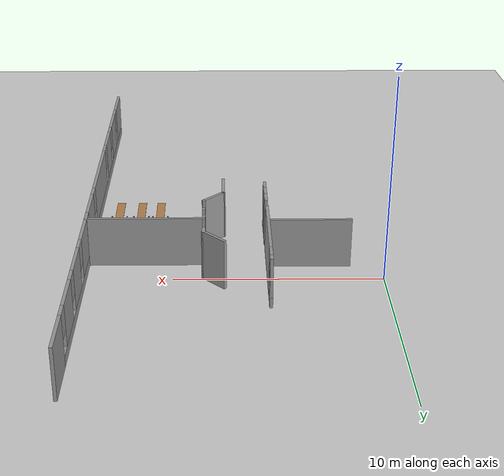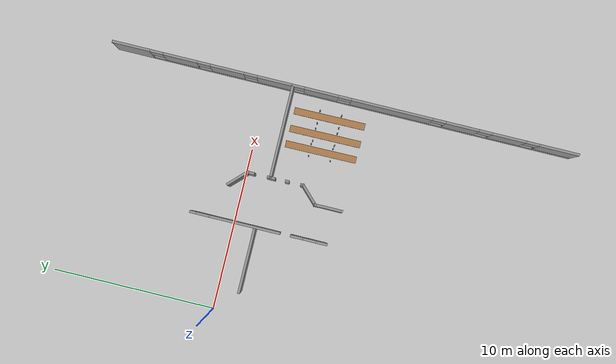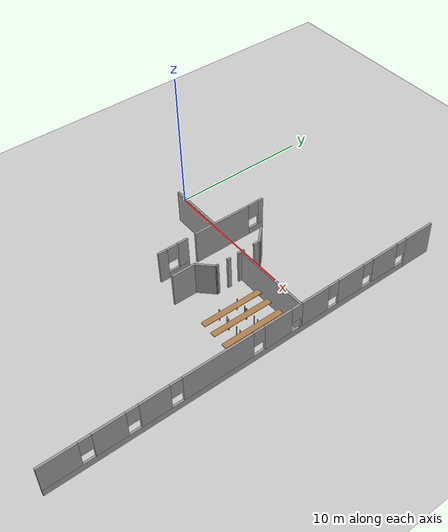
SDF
<sdf version="1.6">
 <world name="default">
  <model name="ground_plane">
   <static>1</static>
   <link name="link">
    <collision name="collision">
     <geometry><plane><normal>0 0 1</normal><size>100 100</size></plane></geometry>
     <surface><friction><ode><mu>100</mu><mu2>50</mu2></ode></friction></surface>
    </collision>
    <visual name="visual">
     <cast_shadows>0</cast_shadows>
     <geometry><plane><normal>0 0 1</normal><size>100 100</size></plane></geometry>
     <material>
      <script><uri>file://media/materials/scripts/gazebo.material</uri><name>Gazebo/Grey</name></script>
     </material>
    </visual>
   </link>
  </model>
  <model name="Parte_DX_(visione_alta_mappa)_CV1">
   <pose>7.84951 -6.02799 0 0 -0 0</pose>
   <link name="Wall_101">
    <collision name="Wall_101_Collision">
     <geometry><box><size>1.75 0.15 2.5</size></box></geometry>
     <pose>0 0 1.25 0 -0 0</pose>
    </collision>
    <visual name="Wall_101_Visual">
     <pose>0 0 1.25 0 -0 0</pose>
     <geometry><box><size>1.75 0.15 2.5</size></box></geometry>
     <material>
      <script><uri>file://media/materials/scripts/gazebo.material</uri><name>Gazebo/Grey</name></script>
      <ambient>1 1 1 1</ambient>
     </material>
    </visual>
    <pose>-0.253384 0.713118 0 0 0 -1.5708</pose>
   </link>
   <link name="Wall_117">
    <collision name="Wall_117_Collision">
     <geometry><box><size>0.15 0.15 2.5</size></box></geometry>
     <pose>0 0 1.25 0 -0 0</pose>
    </collision>
    <visual name="Wall_117_Visual">
     <pose>0 0 1.25 0 -0 0</pose>
     <geometry><box><size>0.15 0.15 2.5</size></box></geometry>
     <material>
      <script><uri>file://media/materials/scripts/gazebo.material</uri><name>Gazebo/Grey</name></script>
      <ambient>1 1 1 1</ambient>
     </material>
    </visual>
    <pose>-0.253384 1.51312 0 0 -0 0</pose>
   </link>
   <link name="Wall_119">
    <collision name="Wall_119_Collision">
     <geometry><box><size>0.25 0.15 2.5</size></box></geometry>
     <pose>0 0 1.25 0 -0 0</pose>
    </collision>
    <visual name="Wall_119_Visual">
     <pose>0 0 1.25 0 -0 0</pose>
     <geometry><box><size>0.25 0.15 2.5</size></box></geometry>
     <material>
      <script><uri>file://media/materials/scripts/gazebo.material</uri><name>Gazebo/Grey</name></script>
      <ambient>1 1 1 1</ambient>
     </material>
    </visual>
    <pose>0.70121 2.51771 0 0 -0 1.5708</pose>
   </link>
   <link name="Wall_123">
    <collision name="Wall_123_Collision">
     <geometry><box><size>1.5 0.15 2.5</size></box></geometry>
     <pose>0 0 1.25 0 -0 0</pose>
    </collision>
    <visual name="Wall_123_Visual">
     <pose>0 0 1.25 0 -0 0</pose>
     <geometry><box><size>1.5 0.15 2.5</size></box></geometry>
     <material>
      <script><uri>file://media/materials/scripts/gazebo.material</uri><name>Gazebo/Grey</name></script>
      <ambient>1 1 1 1</ambient>
     </material>
    </visual>
    <pose>0.223913 1.99042 0 0 -0 0.785398</pose>
   </link>
   <link name="Wall_125">
    <collision name="Wall_125_Collision">
     <geometry><box><size>0.25 0.15 2.5</size></box></geometry>
     <pose>0 0 1.25 0 -0 0</pose>
    </collision>
    <visual name="Wall_125_Visual">
     <pose>0 0 1.25 0 -0 0</pose>
     <geometry><box><size>0.25 0.15 2.5</size></box></geometry>
     <material>
      <script><uri>file://media/materials/scripts/gazebo.material</uri><name>Gazebo/Grey</name></script>
      <ambient>1 1 1 1</ambient>
     </material>
    </visual>
    <pose>0.700925 3.44587 0 0 0 -1.5708</pose>
   </link>
   <link name="Wall_127">
    <collision name="Wall_127_Collision">
     <geometry><box><size>0.5 0.15 2.5</size></box></geometry>
     <pose>0 0 1.25 0 -0 0</pose>
    </collision>
    <visual name="Wall_127_Visual">
     <pose>0 0 1.25 0 -0 0</pose>
     <geometry><box><size>0.5 0.15 2.5</size></box></geometry>
     <material>
      <script><uri>file://media/materials/scripts/gazebo.material</uri><name>Gazebo/Grey</name></script>
      <ambient>1 1 1 1</ambient>
     </material>
    </visual>
    <pose>0.681262 4.41709 0 0 0 -1.5708</pose>
   </link>
   <link name="Wall_130">
    <collision name="Wall_130_Collision">
     <geometry><box><size>5.75 0.15 2.5</size></box></geometry>
     <pose>0 0 1.25 0 -0 0</pose>
    </collision>
    <visual name="Wall_130_Visual">
     <pose>0 0 1.25 0 -0 0</pose>
     <geometry><box><size>5.75 0.15 2.5</size></box></geometry>
     <material>
      <script><uri>file://media/materials/scripts/gazebo.material</uri><name>Gazebo/Grey</name></script>
      <ambient>1 1 1 1</ambient>
     </material>
    </visual>
    <pose>3.51474 4.4692 0 0 -0 3.14159</pose>
   </link>
   <link name="Wall_176">
    <pose>-2.37395 1.38843 0 0 -0 1.5708</pose>
    <visual name="Wall_176_Visual_0">
     <pose>-0.785504 0 1.25 0 -0 0</pose>
     <geometry><box><size>0.678993 0.15 2.5</size></box></geometry>
     <material>
      <script><uri>file://media/materials/scripts/gazebo.material</uri><name>Gazebo/Grey</name></script>
      <ambient>1 1 1 1</ambient>
     </material>
    </visual>
    <collision name="Wall_176_Collision_0">
     <geometry><box><size>0.678993 0.15 2.5</size></box></geometry>
     <pose>-0.785504 0 1.25 0 -0 0</pose>
    </collision>
    <visual name="Wall_176_Visual_1">
     <pose>0.339496 0 0.25 0 -0 0</pose>
     <geometry><box><size>1.57101 0.15 0.5</size></box></geometry>
     <material>
      <script><uri>file://media/materials/scripts/gazebo.material</uri><name>Gazebo/Grey</name></script>
      <ambient>1 1 1 1</ambient>
     </material>
    </visual>
    <collision name="Wall_176_Collision_1">
     <geometry><box><size>1.57101 0.15 0.5</size></box></geometry>
     <pose>0.339496 0 0.25 0 -0 0</pose>
    </collision>
    <visual name="Wall_176_Visual_2">
     <pose>0.739496 0 1.5 0 -0 0</pose>
     <geometry><box><size>0.771007 0.15 2</size></box></geometry>
     <material>
      <script><uri>file://media/materials/scripts/gazebo.material</uri><name>Gazebo/Grey</name></script>
      <ambient>1 1 1 1</ambient>
     </material>
    </visual>
    <collision name="Wall_176_Collision_2">
     <geometry><box><size>0.771007 0.15 2</size></box></geometry>
     <pose>0.739496 0 1.5 0 -0 0</pose>
    </collision>
    <visual name="Wall_176_Visual_3">
     <pose>-0.046007 0 1.9 0 -0 0</pose>
     <geometry><box><size>0.8 0.15 1.2</size></box></geometry>
     <material>
      <script><uri>file://media/materials/scripts/gazebo.material</uri><name>Gazebo/Grey</name></script>
      <ambient>1 1 1 1</ambient>
     </material>
    </visual>
    <collision name="Wall_176_Collision_3">
     <geometry><box><size>0.8 0.15 1.2</size></box></geometry>
     <pose>-0.046007 0 1.9 0 -0 0</pose>
    </collision>
   </link>
   <link name="Wall_178">
    <pose>-2.38898 5.87055 0 0 -0 1.5708</pose>
    <visual name="Wall_178_Visual_0">
     <pose>-0.604104 0 1.25 0 -0 0</pose>
     <geometry><box><size>4.29179 0.15 2.5</size></box></geometry>
     <material>
      <script><uri>file://media/materials/scripts/gazebo.material</uri><name>Gazebo/Grey</name></script>
      <ambient>1 1 1 1</ambient>
     </material>
    </visual>
    <collision name="Wall_178_Collision_0">
     <geometry><box><size>4.29179 0.15 2.5</size></box></geometry>
     <pose>-0.604104 0 1.25 0 -0 0</pose>
    </collision>
    <visual name="Wall_178_Visual_1">
     <pose>2.1459 0 0.25 0 -0 0</pose>
     <geometry><box><size>1.20821 0.15 0.5</size></box></geometry>
     <material>
      <script><uri>file://media/materials/scripts/gazebo.material</uri><name>Gazebo/Grey</name></script>
      <ambient>1 1 1 1</ambient>
     </material>
    </visual>
    <collision name="Wall_178_Collision_1">
     <geometry><box><size>1.20821 0.15 0.5</size></box></geometry>
     <pose>2.1459 0 0.25 0 -0 0</pose>
    </collision>
    <visual name="Wall_178_Visual_2">
     <pose>2.5459 0 1.5 0 -0 0</pose>
     <geometry><box><size>0.408208 0.15 2</size></box></geometry>
     <material>
      <script><uri>file://media/materials/scripts/gazebo.material</uri><name>Gazebo/Grey</name></script>
      <ambient>1 1 1 1</ambient>
     </material>
    </visual>
    <collision name="Wall_178_Collision_2">
     <geometry><box><size>0.408208 0.15 2</size></box></geometry>
     <pose>2.5459 0 1.5 0 -0 0</pose>
    </collision>
    <visual name="Wall_178_Visual_3">
     <pose>1.94179 0 1.9 0 -0 0</pose>
     <geometry><box><size>0.8 0.15 1.2</size></box></geometry>
     <material>
      <script><uri>file://media/materials/scripts/gazebo.material</uri><name>Gazebo/Grey</name></script>
      <ambient>1 1 1 1</ambient>
     </material>
    </visual>
    <collision name="Wall_178_Collision_3">
     <geometry><box><size>0.8 0.15 1.2</size></box></geometry>
     <pose>1.94179 0 1.9 0 -0 0</pose>
    </collision>
   </link>
   <link name="Wall_183">
    <collision name="Wall_183_Collision">
     <geometry><box><size>4 0.15 2.5</size></box></geometry>
     <pose>0 0 1.25 0 -0 0</pose>
    </collision>
    <visual name="Wall_183_Visual">
     <pose>0 0 1.25 0 -0 0</pose>
     <geometry><box><size>4 0.15 2.5</size></box></geometry>
     <material>
      <script><uri>file://media/materials/scripts/gazebo.material</uri><name>Gazebo/Grey</name></script>
      <ambient>1 1 1 1</ambient>
     </material>
    </visual>
    <pose>-4.39285 4.65738 0 0 -0 3.14159</pose>
   </link>
   <link name="Wall_69">
    <pose>6.31785 1.27717 0 0 0 -1.5708</pose>
    <visual name="Wall_69_Visual_0">
     <pose>-13.0951 0 1.25 0 -0 0</pose>
     <geometry><box><size>2.30974 0.15 2.5</size></box></geometry>
     <material>
      <script><uri>file://media/materials/scripts/gazebo.material</uri><name>Gazebo/Grey</name></script>
      <ambient>1 1 1 1</ambient>
     </material>
    </visual>
    <collision name="Wall_69_Collision_0">
     <geometry><box><size>2.30974 0.15 2.5</size></box></geometry>
     <pose>-13.0951 0 1.25 0 -0 0</pose>
    </collision>
    <visual name="Wall_69_Visual_1">
     <pose>1.15487 0 0.25 0 -0 0</pose>
     <geometry><box><size>26.1903 0.15 0.5</size></box></geometry>
     <material>
      <script><uri>file://media/materials/scripts/gazebo.material</uri><name>Gazebo/Grey</name></script>
      <ambient>1 1 1 1</ambient>
     </material>
    </visual>
    <collision name="Wall_69_Collision_1">
     <geometry><box><size>26.1903 0.15 0.5</size></box></geometry>
     <pose>1.15487 0 0.25 0 -0 0</pose>
    </collision>
    <visual name="Wall_69_Visual_2">
     <pose>-10.0967 0 1.5 0 -0 0</pose>
     <geometry><box><size>2.0872 0.15 2</size></box></geometry>
     <material>
      <script><uri>file://media/materials/scripts/gazebo.material</uri><name>Gazebo/Grey</name></script>
      <ambient>1 1 1 1</ambient>
     </material>
    </visual>
    <collision name="Wall_69_Collision_2">
     <geometry><box><size>2.0872 0.15 2</size></box></geometry>
     <pose>-10.0967 0 1.5 0 -0 0</pose>
    </collision>
    <visual name="Wall_69_Visual_3">
     <pose>-7.21698 0 1.5 0 -0 0</pose>
     <geometry><box><size>2.07216 0.15 2</size></box></geometry>
     <material>
      <script><uri>file://media/materials/scripts/gazebo.material</uri><name>Gazebo/Grey</name></script>
      <ambient>1 1 1 1</ambient>
     </material>
    </visual>
    <collision name="Wall_69_Collision_3">
     <geometry><box><size>2.07216 0.15 2</size></box></geometry>
     <pose>-7.21698 0 1.5 0 -0 0</pose>
    </collision>
    <visual name="Wall_69_Visual_4">
     <pose>-4.3373 0 1.5 0 -0 0</pose>
     <geometry><box><size>2.0872 0.15 2</size></box></geometry>
     <material>
      <script><uri>file://media/materials/scripts/gazebo.material</uri><name>Gazebo/Grey</name></script>
      <ambient>1 1 1 1</ambient>
     </material>
    </visual>
    <collision name="Wall_69_Collision_4">
     <geometry><box><size>2.0872 0.15 2</size></box></geometry>
     <pose>-4.3373 0 1.5 0 -0 0</pose>
    </collision>
    <visual name="Wall_69_Visual_5">
     <pose>-1.45762 0 1.5 0 -0 0</pose>
     <geometry><box><size>2.07216 0.15 2</size></box></geometry>
     <material>
      <script><uri>file://media/materials/scripts/gazebo.material</uri><name>Gazebo/Grey</name></script>
      <ambient>1 1 1 1</ambient>
     </material>
    </visual>
    <collision name="Wall_69_Collision_5">
     <geometry><box><size>2.07216 0.15 2</size></box></geometry>
     <pose>-1.45762 0 1.5 0 -0 0</pose>
    </collision>
    <visual name="Wall_69_Visual_6">
     <pose>2.85813 0 1.5 0 -0 0</pose>
     <geometry><box><size>4.95936 0.15 2</size></box></geometry>
     <material>
      <script><uri>file://media/materials/scripts/gazebo.material</uri><name>Gazebo/Grey</name></script>
      <ambient>1 1 1 1</ambient>
     </material>
    </visual>
    <collision name="Wall_69_Collision_6">
     <geometry><box><size>4.95936 0.15 2</size></box></geometry>
     <pose>2.85813 0 1.5 0 -0 0</pose>
    </collision>
    <visual name="Wall_69_Visual_7">
     <pose>7.14382 0 1.5 0 -0 0</pose>
     <geometry><box><size>2.01201 0.15 2</size></box></geometry>
     <material>
      <script><uri>file://media/materials/scripts/gazebo.material</uri><name>Gazebo/Grey</name></script>
      <ambient>1 1 1 1</ambient>
     </material>
    </visual>
    <collision name="Wall_69_Collision_7">
     <geometry><box><size>2.01201 0.15 2</size></box></geometry>
     <pose>7.14382 0 1.5 0 -0 0</pose>
    </collision>
    <visual name="Wall_69_Visual_8">
     <pose>9.9859 0 1.5 0 -0 0</pose>
     <geometry><box><size>2.07216 0.15 2</size></box></geometry>
     <material>
      <script><uri>file://media/materials/scripts/gazebo.material</uri><name>Gazebo/Grey</name></script>
      <ambient>1 1 1 1</ambient>
     </material>
    </visual>
    <collision name="Wall_69_Collision_8">
     <geometry><box><size>2.07216 0.15 2</size></box></geometry>
     <pose>9.9859 0 1.5 0 -0 0</pose>
    </collision>
    <visual name="Wall_69_Visual_9">
     <pose>13.036 0 1.5 0 -0 0</pose>
     <geometry><box><size>2.42802 0.15 2</size></box></geometry>
     <material>
      <script><uri>file://media/materials/scripts/gazebo.material</uri><name>Gazebo/Grey</name></script>
      <ambient>1 1 1 1</ambient>
     </material>
    </visual>
    <collision name="Wall_69_Collision_9">
     <geometry><box><size>2.42802 0.15 2</size></box></geometry>
     <pose>13.036 0 1.5 0 -0 0</pose>
    </collision>
    <visual name="Wall_69_Visual_10">
     <pose>-11.5403 0 1.9 0 -0 0</pose>
     <geometry><box><size>0.8 0.15 1.2</size></box></geometry>
     <material>
      <script><uri>file://media/materials/scripts/gazebo.material</uri><name>Gazebo/Grey</name></script>
      <ambient>1 1 1 1</ambient>
     </material>
    </visual>
    <collision name="Wall_69_Collision_10">
     <geometry><box><size>0.8 0.15 1.2</size></box></geometry>
     <pose>-11.5403 0 1.9 0 -0 0</pose>
    </collision>
    <visual name="Wall_69_Visual_11">
     <pose>-8.65306 0 1.9 0 -0 0</pose>
     <geometry><box><size>0.8 0.15 1.2</size></box></geometry>
     <material>
      <script><uri>file://media/materials/scripts/gazebo.material</uri><name>Gazebo/Grey</name></script>
      <ambient>1 1 1 1</ambient>
     </material>
    </visual>
    <collision name="Wall_69_Collision_11">
     <geometry><box><size>0.8 0.15 1.2</size></box></geometry>
     <pose>-8.65306 0 1.9 0 -0 0</pose>
    </collision>
    <visual name="Wall_69_Visual_12">
     <pose>-5.7809 0 1.9 0 -0 0</pose>
     <geometry><box><size>0.8 0.15 1.2</size></box></geometry>
     <material>
      <script><uri>file://media/materials/scripts/gazebo.material</uri><name>Gazebo/Grey</name></script>
      <ambient>1 1 1 1</ambient>
     </material>
    </visual>
    <collision name="Wall_69_Collision_12">
     <geometry><box><size>0.8 0.15 1.2</size></box></geometry>
     <pose>-5.7809 0 1.9 0 -0 0</pose>
    </collision>
    <visual name="Wall_69_Visual_13">
     <pose>-2.8937 0 1.9 0 -0 0</pose>
     <geometry><box><size>0.8 0.15 1.2</size></box></geometry>
     <material>
      <script><uri>file://media/materials/scripts/gazebo.material</uri><name>Gazebo/Grey</name></script>
      <ambient>1 1 1 1</ambient>
     </material>
    </visual>
    <collision name="Wall_69_Collision_13">
     <geometry><box><size>0.8 0.15 1.2</size></box></geometry>
     <pose>-2.8937 0 1.9 0 -0 0</pose>
    </collision>
    <visual name="Wall_69_Visual_14">
     <pose>-0.021545 0 1.9 0 -0 0</pose>
     <geometry><box><size>0.8 0.15 1.2</size></box></geometry>
     <material>
      <script><uri>file://media/materials/scripts/gazebo.material</uri><name>Gazebo/Grey</name></script>
      <ambient>1 1 1 1</ambient>
     </material>
    </visual>
    <collision name="Wall_69_Collision_14">
     <geometry><box><size>0.8 0.15 1.2</size></box></geometry>
     <pose>-0.021545 0 1.9 0 -0 0</pose>
    </collision>
    <visual name="Wall_69_Visual_15">
     <pose>5.73781 0 1.9 0 -0 0</pose>
     <geometry><box><size>0.8 0.15 1.2</size></box></geometry>
     <material>
      <script><uri>file://media/materials/scripts/gazebo.material</uri><name>Gazebo/Grey</name></script>
      <ambient>1 1 1 1</ambient>
     </material>
    </visual>
    <collision name="Wall_69_Collision_15">
     <geometry><box><size>0.8 0.15 1.2</size></box></geometry>
     <pose>5.73781 0 1.9 0 -0 0</pose>
    </collision>
    <visual name="Wall_69_Visual_16">
     <pose>8.54982 0 1.9 0 -0 0</pose>
     <geometry><box><size>0.8 0.15 1.2</size></box></geometry>
     <material>
      <script><uri>file://media/materials/scripts/gazebo.material</uri><name>Gazebo/Grey</name></script>
      <ambient>1 1 1 1</ambient>
     </material>
    </visual>
    <collision name="Wall_69_Collision_16">
     <geometry><box><size>0.8 0.15 1.2</size></box></geometry>
     <pose>8.54982 0 1.9 0 -0 0</pose>
    </collision>
    <visual name="Wall_69_Visual_17">
     <pose>11.422 0 1.9 0 -0 0</pose>
     <geometry><box><size>0.8 0.15 1.2</size></box></geometry>
     <material>
      <script><uri>file://media/materials/scripts/gazebo.material</uri><name>Gazebo/Grey</name></script>
      <ambient>1 1 1 1</ambient>
     </material>
    </visual>
    <collision name="Wall_69_Collision_17">
     <geometry><box><size>0.8 0.15 1.2</size></box></geometry>
     <pose>11.422 0 1.9 0 -0 0</pose>
    </collision>
   </link>
   <link name="Wall_90">
    <collision name="Wall_90_Collision">
     <geometry><box><size>1.5 0.15 2.5</size></box></geometry>
     <pose>0 0 1.25 0 -0 0</pose>
    </collision>
    <visual name="Wall_90_Visual">
     <pose>0 0 1.25 0 -0 0</pose>
     <geometry><box><size>1.5 0.15 2.5</size></box></geometry>
     <material>
      <script><uri>file://media/materials/scripts/gazebo.material</uri><name>Gazebo/Grey</name></script>
      <ambient>1 1 1 1</ambient>
     </material>
    </visual>
    <pose>0.198734 6.33759 0 0 0 -0.785398</pose>
   </link>
   <link name="Wall_91">
    <collision name="Wall_91_Collision">
     <geometry><box><size>0.5 0.15 2.5</size></box></geometry>
     <pose>0 0 1.25 0 -0 0</pose>
    </collision>
    <visual name="Wall_91_Visual">
     <pose>0 0 1.25 0 -0 0</pose>
     <geometry><box><size>0.5 0.15 2.5</size></box></geometry>
     <material>
      <script><uri>file://media/materials/scripts/gazebo.material</uri><name>Gazebo/Grey</name></script>
      <ambient>1 1 1 1</ambient>
     </material>
    </visual>
    <pose>0.676031 5.68529 0 0 0 -1.5708</pose>
   </link>
   <static>1</static>
  </model>
  <model name="tablesclass_clone_24">
   <link name="link">
    <inertial>
     <inertia><ixx>0</ixx><ixy>0</ixy><ixz>0</ixz><iyy>0</iyy><iyz>0</iyz><izz>0</izz></inertia>
     <mass>1.73923</mass>
    </inertial>
    <visual name="front_right_leg">
     <pose>0.68 -0.38 0.5 0 -0 0</pose>
     <geometry><cylinder><radius>0.0324505</radius><length>1</length></cylinder></geometry>
     <material>
      <script><uri>file://media/materials/scripts/gazebo.material</uri><name>Gazebo/Grey</name></script>
      <ambient>0.3 0.3 0.3 1</ambient>
      <diffuse>0.7 0.7 0.7 1</diffuse>
      <specular>0.01 0.01 0.01 1</specular>
      <emissive>0 0 0 1</emissive>
     </material>
    </visual>
    <visual name="back_left_leg">
     <pose>-0.68 0.38 0.5 0 -0 0</pose>
     <geometry><cylinder><radius>0.0324505</radius><length>1</length></cylinder></geometry>
     <material>
      <script><uri>file://media/materials/scripts/gazebo.material</uri><name>Gazebo/Grey</name></script>
      <ambient>0.3 0.3 0.3 1</ambient>
      <diffuse>0.7 0.7 0.7 1</diffuse>
      <specular>0.01 0.01 0.01 1</specular>
      <emissive>0 0 0 1</emissive>
     </material>
    </visual>
    <visual name="front_left_leg">
     <pose>0.68 0.38 0.5 0 -0 0</pose>
     <geometry><cylinder><radius>0.0324505</radius><length>1</length></cylinder></geometry>
     <material>
      <script><uri>file://media/materials/scripts/gazebo.material</uri><name>Gazebo/Grey</name></script>
      <ambient>0.3 0.3 0.3 1</ambient>
      <diffuse>0.7 0.7 0.7 1</diffuse>
      <specular>0.01 0.01 0.01 1</specular>
      <emissive>0 0 0 1</emissive>
     </material>
    </visual>
    <visual name="visual1">
     <pose>0 0 1 0 -0 0</pose>
     <geometry><box><size>4.38513 0.412326 0.04</size></box></geometry>
     <material>
      <script><uri>file://media/materials/scripts/gazebo.material</uri><name>Gazebo/Wood</name></script>
      <ambient>1 1 1 1</ambient>
      <diffuse>1 1 1 1</diffuse>
      <specular>0.2 0.2 0.2 1</specular>
      <emissive>0 0 0 1</emissive>
     </material>
    </visual>
    <visual name="back_right_leg">
     <pose>-0.68 -0.38 0.5 0 -0 0</pose>
     <geometry><cylinder><radius>0.0324505</radius><length>1</length></cylinder></geometry>
     <material>
      <script><uri>file://media/materials/scripts/gazebo.material</uri><name>Gazebo/Grey</name></script>
      <ambient>0.3 0.3 0.3 1</ambient>
      <diffuse>0.7 0.7 0.7 1</diffuse>
      <specular>0.01 0.01 0.01 1</specular>
      <emissive>0 0 0 1</emissive>
     </material>
    </visual>
    <collision name="front_left_leg">
     <pose>0.68 0.38 0.5 0 -0 0</pose>
     <geometry><cylinder><radius>0.03245</radius><length>1</length></cylinder></geometry>
     <surface>
      <friction>
       <ode><mu>1</mu><mu2>1</mu2><fdir1>0 0 0</fdir1><slip1>0</slip1><slip2>0</slip2></ode>
       <torsional>
        <coefficient>1</coefficient>
        <patch_radius>0</patch_radius>
        <surface_radius>0</surface_radius>
        <use_patch_radius>1</use_patch_radius>
        <ode><slip>0</slip></ode>
       </torsional>
      </friction>
      <bounce><restitution_coefficient>0</restitution_coefficient><threshold>1e+06</threshold></bounce>
      <contact>
       <collide_without_contact>0</collide_without_contact>
       <collide_without_contact_bitmask>1</collide_without_contact_bitmask>
       <collide_bitmask>1</collide_bitmask>
       <ode>
        <soft_cfm>0</soft_cfm>
        <soft_erp>0.2</soft_erp>
        <kp>1e+13</kp>
        <kd>1</kd>
        <max_vel>0.01</max_vel>
        <min_depth>0</min_depth>
       </ode>
       <bullet>
        <split_impulse>1</split_impulse>
        <split_impulse_penetration_threshold>-0.01</split_impulse_penetration_threshold>
        <soft_cfm>0</soft_cfm>
        <soft_erp>0.2</soft_erp>
        <kp>1e+13</kp>
        <kd>1</kd>
       </bullet>
      </contact>
     </surface>
    </collision>
    <collision name="front_right_leg">
     <pose>0.68 -0.38 0.5 0 -0 0</pose>
     <geometry><cylinder><radius>0.03245</radius><length>1</length></cylinder></geometry>
     <surface>
      <friction>
       <ode><mu>1</mu><mu2>1</mu2><fdir1>0 0 0</fdir1><slip1>0</slip1><slip2>0</slip2></ode>
       <torsional>
        <coefficient>1</coefficient>
        <patch_radius>0</patch_radius>
        <surface_radius>0</surface_radius>
        <use_patch_radius>1</use_patch_radius>
        <ode><slip>0</slip></ode>
       </torsional>
      </friction>
      <bounce><restitution_coefficient>0</restitution_coefficient><threshold>1e+06</threshold></bounce>
      <contact>
       <collide_without_contact>0</collide_without_contact>
       <collide_without_contact_bitmask>1</collide_without_contact_bitmask>
       <collide_bitmask>1</collide_bitmask>
       <ode>
        <soft_cfm>0</soft_cfm>
        <soft_erp>0.2</soft_erp>
        <kp>1e+13</kp>
        <kd>1</kd>
        <max_vel>0.01</max_vel>
        <min_depth>0</min_depth>
       </ode>
       <bullet>
        <split_impulse>1</split_impulse>
        <split_impulse_penetration_threshold>-0.01</split_impulse_penetration_threshold>
        <soft_cfm>0</soft_cfm>
        <soft_erp>0.2</soft_erp>
        <kp>1e+13</kp>
        <kd>1</kd>
       </bullet>
      </contact>
     </surface>
    </collision>
    <collision name="back_left_leg">
     <pose>-0.68 0.38 0.5 0 -0 0</pose>
     <geometry><cylinder><radius>0.03245</radius><length>1</length></cylinder></geometry>
     <surface>
      <friction>
       <ode><mu>1</mu><mu2>1</mu2><fdir1>0 0 0</fdir1><slip1>0</slip1><slip2>0</slip2></ode>
       <torsional>
        <coefficient>1</coefficient>
        <patch_radius>0</patch_radius>
        <surface_radius>0</surface_radius>
        <use_patch_radius>1</use_patch_radius>
        <ode><slip>0</slip></ode>
       </torsional>
      </friction>
      <bounce><restitution_coefficient>0</restitution_coefficient><threshold>1e+06</threshold></bounce>
      <contact>
       <collide_without_contact>0</collide_without_contact>
       <collide_without_contact_bitmask>1</collide_without_contact_bitmask>
       <collide_bitmask>1</collide_bitmask>
       <ode>
        <soft_cfm>0</soft_cfm>
        <soft_erp>0.2</soft_erp>
        <kp>1e+13</kp>
        <kd>1</kd>
        <max_vel>0.01</max_vel>
        <min_depth>0</min_depth>
       </ode>
       <bullet>
        <split_impulse>1</split_impulse>
        <split_impulse_penetration_threshold>-0.01</split_impulse_penetration_threshold>
        <soft_cfm>0</soft_cfm>
        <soft_erp>0.2</soft_erp>
        <kp>1e+13</kp>
        <kd>1</kd>
       </bullet>
      </contact>
     </surface>
    </collision>
    <collision name="back_right_leg">
     <pose>-0.68 -0.38 0.5 0 -0 0</pose>
     <geometry><cylinder><radius>0.03245</radius><length>1</length></cylinder></geometry>
     <surface>
      <friction>
       <ode><mu>1</mu><mu2>1</mu2><fdir1>0 0 0</fdir1><slip1>0</slip1><slip2>0</slip2></ode>
       <torsional>
        <coefficient>1</coefficient>
        <patch_radius>0</patch_radius>
        <surface_radius>0</surface_radius>
        <use_patch_radius>1</use_patch_radius>
        <ode><slip>0</slip></ode>
       </torsional>
      </friction>
      <bounce><restitution_coefficient>0</restitution_coefficient><threshold>1e+06</threshold></bounce>
      <contact>
       <collide_without_contact>0</collide_without_contact>
       <collide_without_contact_bitmask>1</collide_without_contact_bitmask>
       <collide_bitmask>1</collide_bitmask>
       <ode>
        <soft_cfm>0</soft_cfm>
        <soft_erp>0.2</soft_erp>
        <kp>1e+13</kp>
        <kd>1</kd>
        <max_vel>0.01</max_vel>
        <min_depth>0</min_depth>
       </ode>
       <bullet>
        <split_impulse>1</split_impulse>
        <split_impulse_penetration_threshold>-0.01</split_impulse_penetration_threshold>
        <soft_cfm>0</soft_cfm>
        <soft_erp>0.2</soft_erp>
        <kp>1e+13</kp>
        <kd>1</kd>
       </bullet>
      </contact>
     </surface>
    </collision>
    <collision name="surface">
     <pose>0 0 1 0 -0 0</pose>
     <geometry><box><size>4.69836 0.412326 0.03</size></box></geometry>
     <surface>
      <friction>
       <ode><mu>0.6</mu><mu2>0.6</mu2><fdir1>0 0 0</fdir1><slip1>0</slip1><slip2>0</slip2></ode>
       <torsional>
        <coefficient>1</coefficient>
        <patch_radius>0</patch_radius>
        <surface_radius>0</surface_radius>
        <use_patch_radius>1</use_patch_radius>
        <ode><slip>0</slip></ode>
       </torsional>
      </friction>
      <bounce><restitution_coefficient>0</restitution_coefficient><threshold>1e+06</threshold></bounce>
      <contact>
       <collide_without_contact>0</collide_without_contact>
       <collide_without_contact_bitmask>1</collide_without_contact_bitmask>
       <collide_bitmask>1</collide_bitmask>
       <ode>
        <soft_cfm>0</soft_cfm>
        <soft_erp>0.2</soft_erp>
        <kp>1e+13</kp>
        <kd>1</kd>
        <max_vel>0.01</max_vel>
        <min_depth>0</min_depth>
       </ode>
       <bullet>
        <split_impulse>1</split_impulse>
        <split_impulse_penetration_threshold>-0.01</split_impulse_penetration_threshold>
        <soft_cfm>0</soft_cfm>
        <soft_erp>0.2</soft_erp>
        <kp>1e+13</kp>
        <kd>1</kd>
       </bullet>
      </contact>
     </surface>
    </collision>
   </link>
   <static>0</static>
   <pose>10.8161 -4.12254 0.00891 2e-06 -0.012508 -1.56298</pose>
  </model>
  <model name="tablesclass_clone_26">
   <link name="link">
    <inertial>
     <inertia><ixx>0</ixx><ixy>0</ixy><ixz>0</ixz><iyy>0</iyy><iyz>0</iyz><izz>0</izz></inertia>
     <mass>1.73923</mass>
    </inertial>
    <visual name="front_right_leg">
     <pose>0.68 -0.38 0.5 0 -0 0</pose>
     <geometry><cylinder><radius>0.0324505</radius><length>1</length></cylinder></geometry>
     <material>
      <script><uri>file://media/materials/scripts/gazebo.material</uri><name>Gazebo/Grey</name></script>
      <ambient>0.3 0.3 0.3 1</ambient>
      <diffuse>0.7 0.7 0.7 1</diffuse>
      <specular>0.01 0.01 0.01 1</specular>
      <emissive>0 0 0 1</emissive>
     </material>
    </visual>
    <visual name="back_left_leg">
     <pose>-0.68 0.38 0.5 0 -0 0</pose>
     <geometry><cylinder><radius>0.0324505</radius><length>1</length></cylinder></geometry>
     <material>
      <script><uri>file://media/materials/scripts/gazebo.material</uri><name>Gazebo/Grey</name></script>
      <ambient>0.3 0.3 0.3 1</ambient>
      <diffuse>0.7 0.7 0.7 1</diffuse>
      <specular>0.01 0.01 0.01 1</specular>
      <emissive>0 0 0 1</emissive>
     </material>
    </visual>
    <visual name="front_left_leg">
     <pose>0.68 0.38 0.5 0 -0 0</pose>
     <geometry><cylinder><radius>0.0324505</radius><length>1</length></cylinder></geometry>
     <material>
      <script><uri>file://media/materials/scripts/gazebo.material</uri><name>Gazebo/Grey</name></script>
      <ambient>0.3 0.3 0.3 1</ambient>
      <diffuse>0.7 0.7 0.7 1</diffuse>
      <specular>0.01 0.01 0.01 1</specular>
      <emissive>0 0 0 1</emissive>
     </material>
    </visual>
    <visual name="visual1">
     <pose>0 0 1 0 -0 0</pose>
     <geometry><box><size>4.38513 0.412326 0.04</size></box></geometry>
     <material>
      <script><uri>file://media/materials/scripts/gazebo.material</uri><name>Gazebo/Wood</name></script>
      <ambient>1 1 1 1</ambient>
      <diffuse>1 1 1 1</diffuse>
      <specular>0.2 0.2 0.2 1</specular>
      <emissive>0 0 0 1</emissive>
     </material>
    </visual>
    <visual name="back_right_leg">
     <pose>-0.68 -0.38 0.5 0 -0 0</pose>
     <geometry><cylinder><radius>0.0324505</radius><length>1</length></cylinder></geometry>
     <material>
      <script><uri>file://media/materials/scripts/gazebo.material</uri><name>Gazebo/Grey</name></script>
      <ambient>0.3 0.3 0.3 1</ambient>
      <diffuse>0.7 0.7 0.7 1</diffuse>
      <specular>0.01 0.01 0.01 1</specular>
      <emissive>0 0 0 1</emissive>
     </material>
    </visual>
    <collision name="front_left_leg">
     <pose>0.68 0.38 0.5 0 -0 0</pose>
     <geometry><cylinder><radius>0.03245</radius><length>1</length></cylinder></geometry>
     <surface>
      <friction>
       <ode><mu>1</mu><mu2>1</mu2><fdir1>0 0 0</fdir1><slip1>0</slip1><slip2>0</slip2></ode>
       <torsional>
        <coefficient>1</coefficient>
        <patch_radius>0</patch_radius>
        <surface_radius>0</surface_radius>
        <use_patch_radius>1</use_patch_radius>
        <ode><slip>0</slip></ode>
       </torsional>
      </friction>
      <bounce><restitution_coefficient>0</restitution_coefficient><threshold>1e+06</threshold></bounce>
      <contact>
       <collide_without_contact>0</collide_without_contact>
       <collide_without_contact_bitmask>1</collide_without_contact_bitmask>
       <collide_bitmask>1</collide_bitmask>
       <ode>
        <soft_cfm>0</soft_cfm>
        <soft_erp>0.2</soft_erp>
        <kp>1e+13</kp>
        <kd>1</kd>
        <max_vel>0.01</max_vel>
        <min_depth>0</min_depth>
       </ode>
       <bullet>
        <split_impulse>1</split_impulse>
        <split_impulse_penetration_threshold>-0.01</split_impulse_penetration_threshold>
        <soft_cfm>0</soft_cfm>
        <soft_erp>0.2</soft_erp>
        <kp>1e+13</kp>
        <kd>1</kd>
       </bullet>
      </contact>
     </surface>
    </collision>
    <collision name="front_right_leg">
     <pose>0.68 -0.38 0.5 0 -0 0</pose>
     <geometry><cylinder><radius>0.03245</radius><length>1</length></cylinder></geometry>
     <surface>
      <friction>
       <ode><mu>1</mu><mu2>1</mu2><fdir1>0 0 0</fdir1><slip1>0</slip1><slip2>0</slip2></ode>
       <torsional>
        <coefficient>1</coefficient>
        <patch_radius>0</patch_radius>
        <surface_radius>0</surface_radius>
        <use_patch_radius>1</use_patch_radius>
        <ode><slip>0</slip></ode>
       </torsional>
      </friction>
      <bounce><restitution_coefficient>0</restitution_coefficient><threshold>1e+06</threshold></bounce>
      <contact>
       <collide_without_contact>0</collide_without_contact>
       <collide_without_contact_bitmask>1</collide_without_contact_bitmask>
       <collide_bitmask>1</collide_bitmask>
       <ode>
        <soft_cfm>0</soft_cfm>
        <soft_erp>0.2</soft_erp>
        <kp>1e+13</kp>
        <kd>1</kd>
        <max_vel>0.01</max_vel>
        <min_depth>0</min_depth>
       </ode>
       <bullet>
        <split_impulse>1</split_impulse>
        <split_impulse_penetration_threshold>-0.01</split_impulse_penetration_threshold>
        <soft_cfm>0</soft_cfm>
        <soft_erp>0.2</soft_erp>
        <kp>1e+13</kp>
        <kd>1</kd>
       </bullet>
      </contact>
     </surface>
    </collision>
    <collision name="back_left_leg">
     <pose>-0.68 0.38 0.5 0 -0 0</pose>
     <geometry><cylinder><radius>0.03245</radius><length>1</length></cylinder></geometry>
     <surface>
      <friction>
       <ode><mu>1</mu><mu2>1</mu2><fdir1>0 0 0</fdir1><slip1>0</slip1><slip2>0</slip2></ode>
       <torsional>
        <coefficient>1</coefficient>
        <patch_radius>0</patch_radius>
        <surface_radius>0</surface_radius>
        <use_patch_radius>1</use_patch_radius>
        <ode><slip>0</slip></ode>
       </torsional>
      </friction>
      <bounce><restitution_coefficient>0</restitution_coefficient><threshold>1e+06</threshold></bounce>
      <contact>
       <collide_without_contact>0</collide_without_contact>
       <collide_without_contact_bitmask>1</collide_without_contact_bitmask>
       <collide_bitmask>1</collide_bitmask>
       <ode>
        <soft_cfm>0</soft_cfm>
        <soft_erp>0.2</soft_erp>
        <kp>1e+13</kp>
        <kd>1</kd>
        <max_vel>0.01</max_vel>
        <min_depth>0</min_depth>
       </ode>
       <bullet>
        <split_impulse>1</split_impulse>
        <split_impulse_penetration_threshold>-0.01</split_impulse_penetration_threshold>
        <soft_cfm>0</soft_cfm>
        <soft_erp>0.2</soft_erp>
        <kp>1e+13</kp>
        <kd>1</kd>
       </bullet>
      </contact>
     </surface>
    </collision>
    <collision name="back_right_leg">
     <pose>-0.68 -0.38 0.5 0 -0 0</pose>
     <geometry><cylinder><radius>0.03245</radius><length>1</length></cylinder></geometry>
     <surface>
      <friction>
       <ode><mu>1</mu><mu2>1</mu2><fdir1>0 0 0</fdir1><slip1>0</slip1><slip2>0</slip2></ode>
       <torsional>
        <coefficient>1</coefficient>
        <patch_radius>0</patch_radius>
        <surface_radius>0</surface_radius>
        <use_patch_radius>1</use_patch_radius>
        <ode><slip>0</slip></ode>
       </torsional>
      </friction>
      <bounce><restitution_coefficient>0</restitution_coefficient><threshold>1e+06</threshold></bounce>
      <contact>
       <collide_without_contact>0</collide_without_contact>
       <collide_without_contact_bitmask>1</collide_without_contact_bitmask>
       <collide_bitmask>1</collide_bitmask>
       <ode>
        <soft_cfm>0</soft_cfm>
        <soft_erp>0.2</soft_erp>
        <kp>1e+13</kp>
        <kd>1</kd>
        <max_vel>0.01</max_vel>
        <min_depth>0</min_depth>
       </ode>
       <bullet>
        <split_impulse>1</split_impulse>
        <split_impulse_penetration_threshold>-0.01</split_impulse_penetration_threshold>
        <soft_cfm>0</soft_cfm>
        <soft_erp>0.2</soft_erp>
        <kp>1e+13</kp>
        <kd>1</kd>
       </bullet>
      </contact>
     </surface>
    </collision>
    <collision name="surface">
     <pose>0 0 1 0 -0 0</pose>
     <geometry><box><size>4.69836 0.412326 0.03</size></box></geometry>
     <surface>
      <friction>
       <ode><mu>0.6</mu><mu2>0.6</mu2><fdir1>0 0 0</fdir1><slip1>0</slip1><slip2>0</slip2></ode>
       <torsional>
        <coefficient>1</coefficient>
        <patch_radius>0</patch_radius>
        <surface_radius>0</surface_radius>
        <use_patch_radius>1</use_patch_radius>
        <ode><slip>0</slip></ode>
       </torsional>
      </friction>
      <bounce><restitution_coefficient>0</restitution_coefficient><threshold>1e+06</threshold></bounce>
      <contact>
       <collide_without_contact>0</collide_without_contact>
       <collide_without_contact_bitmask>1</collide_without_contact_bitmask>
       <collide_bitmask>1</collide_bitmask>
       <ode>
        <soft_cfm>0</soft_cfm>
        <soft_erp>0.2</soft_erp>
        <kp>1e+13</kp>
        <kd>1</kd>
        <max_vel>0.01</max_vel>
        <min_depth>0</min_depth>
       </ode>
       <bullet>
        <split_impulse>1</split_impulse>
        <split_impulse_penetration_threshold>-0.01</split_impulse_penetration_threshold>
        <soft_cfm>0</soft_cfm>
        <soft_erp>0.2</soft_erp>
        <kp>1e+13</kp>
        <kd>1</kd>
       </bullet>
      </contact>
     </surface>
    </collision>
   </link>
   <static>0</static>
   <pose>11.7873 -4.15674 0.010203 -0 -0.014322 -1.56357</pose>
  </model>
  <model name="tablesclass_clone_28">
   <link name="link">
    <inertial>
     <inertia><ixx>0</ixx><ixy>0</ixy><ixz>0</ixz><iyy>0</iyy><iyz>0</iyz><izz>0</izz></inertia>
     <mass>1.73923</mass>
    </inertial>
    <visual name="front_right_leg">
     <pose>0.68 -0.38 0.5 0 -0 0</pose>
     <geometry><cylinder><radius>0.0324505</radius><length>1</length></cylinder></geometry>
     <material>
      <script><uri>file://media/materials/scripts/gazebo.material</uri><name>Gazebo/Grey</name></script>
      <ambient>0.3 0.3 0.3 1</ambient>
      <diffuse>0.7 0.7 0.7 1</diffuse>
      <specular>0.01 0.01 0.01 1</specular>
      <emissive>0 0 0 1</emissive>
     </material>
    </visual>
    <visual name="back_left_leg">
     <pose>-0.68 0.38 0.5 0 -0 0</pose>
     <geometry><cylinder><radius>0.0324505</radius><length>1</length></cylinder></geometry>
     <material>
      <script><uri>file://media/materials/scripts/gazebo.material</uri><name>Gazebo/Grey</name></script>
      <ambient>0.3 0.3 0.3 1</ambient>
      <diffuse>0.7 0.7 0.7 1</diffuse>
      <specular>0.01 0.01 0.01 1</specular>
      <emissive>0 0 0 1</emissive>
     </material>
    </visual>
    <visual name="front_left_leg">
     <pose>0.68 0.38 0.5 0 -0 0</pose>
     <geometry><cylinder><radius>0.0324505</radius><length>1</length></cylinder></geometry>
     <material>
      <script><uri>file://media/materials/scripts/gazebo.material</uri><name>Gazebo/Grey</name></script>
      <ambient>0.3 0.3 0.3 1</ambient>
      <diffuse>0.7 0.7 0.7 1</diffuse>
      <specular>0.01 0.01 0.01 1</specular>
      <emissive>0 0 0 1</emissive>
     </material>
    </visual>
    <visual name="visual1">
     <pose>0 0 1 0 -0 0</pose>
     <geometry><box><size>4.38513 0.412326 0.04</size></box></geometry>
     <material>
      <script><uri>file://media/materials/scripts/gazebo.material</uri><name>Gazebo/Wood</name></script>
      <ambient>1 1 1 1</ambient>
      <diffuse>1 1 1 1</diffuse>
      <specular>0.2 0.2 0.2 1</specular>
      <emissive>0 0 0 1</emissive>
     </material>
    </visual>
    <visual name="back_right_leg">
     <pose>-0.68 -0.38 0.5 0 -0 0</pose>
     <geometry><cylinder><radius>0.0324505</radius><length>1</length></cylinder></geometry>
     <material>
      <script><uri>file://media/materials/scripts/gazebo.material</uri><name>Gazebo/Grey</name></script>
      <ambient>0.3 0.3 0.3 1</ambient>
      <diffuse>0.7 0.7 0.7 1</diffuse>
      <specular>0.01 0.01 0.01 1</specular>
      <emissive>0 0 0 1</emissive>
     </material>
    </visual>
    <collision name="front_left_leg">
     <pose>0.68 0.38 0.5 0 -0 0</pose>
     <geometry><cylinder><radius>0.03245</radius><length>1</length></cylinder></geometry>
     <surface>
      <friction>
       <ode><mu>1</mu><mu2>1</mu2><fdir1>0 0 0</fdir1><slip1>0</slip1><slip2>0</slip2></ode>
       <torsional>
        <coefficient>1</coefficient>
        <patch_radius>0</patch_radius>
        <surface_radius>0</surface_radius>
        <use_patch_radius>1</use_patch_radius>
        <ode><slip>0</slip></ode>
       </torsional>
      </friction>
      <bounce><restitution_coefficient>0</restitution_coefficient><threshold>1e+06</threshold></bounce>
      <contact>
       <collide_without_contact>0</collide_without_contact>
       <collide_without_contact_bitmask>1</collide_without_contact_bitmask>
       <collide_bitmask>1</collide_bitmask>
       <ode>
        <soft_cfm>0</soft_cfm>
        <soft_erp>0.2</soft_erp>
        <kp>1e+13</kp>
        <kd>1</kd>
        <max_vel>0.01</max_vel>
        <min_depth>0</min_depth>
       </ode>
       <bullet>
        <split_impulse>1</split_impulse>
        <split_impulse_penetration_threshold>-0.01</split_impulse_penetration_threshold>
        <soft_cfm>0</soft_cfm>
        <soft_erp>0.2</soft_erp>
        <kp>1e+13</kp>
        <kd>1</kd>
       </bullet>
      </contact>
     </surface>
    </collision>
    <collision name="front_right_leg">
     <pose>0.68 -0.38 0.5 0 -0 0</pose>
     <geometry><cylinder><radius>0.03245</radius><length>1</length></cylinder></geometry>
     <surface>
      <friction>
       <ode><mu>1</mu><mu2>1</mu2><fdir1>0 0 0</fdir1><slip1>0</slip1><slip2>0</slip2></ode>
       <torsional>
        <coefficient>1</coefficient>
        <patch_radius>0</patch_radius>
        <surface_radius>0</surface_radius>
        <use_patch_radius>1</use_patch_radius>
        <ode><slip>0</slip></ode>
       </torsional>
      </friction>
      <bounce><restitution_coefficient>0</restitution_coefficient><threshold>1e+06</threshold></bounce>
      <contact>
       <collide_without_contact>0</collide_without_contact>
       <collide_without_contact_bitmask>1</collide_without_contact_bitmask>
       <collide_bitmask>1</collide_bitmask>
       <ode>
        <soft_cfm>0</soft_cfm>
        <soft_erp>0.2</soft_erp>
        <kp>1e+13</kp>
        <kd>1</kd>
        <max_vel>0.01</max_vel>
        <min_depth>0</min_depth>
       </ode>
       <bullet>
        <split_impulse>1</split_impulse>
        <split_impulse_penetration_threshold>-0.01</split_impulse_penetration_threshold>
        <soft_cfm>0</soft_cfm>
        <soft_erp>0.2</soft_erp>
        <kp>1e+13</kp>
        <kd>1</kd>
       </bullet>
      </contact>
     </surface>
    </collision>
    <collision name="back_left_leg">
     <pose>-0.68 0.38 0.5 0 -0 0</pose>
     <geometry><cylinder><radius>0.03245</radius><length>1</length></cylinder></geometry>
     <surface>
      <friction>
       <ode><mu>1</mu><mu2>1</mu2><fdir1>0 0 0</fdir1><slip1>0</slip1><slip2>0</slip2></ode>
       <torsional>
        <coefficient>1</coefficient>
        <patch_radius>0</patch_radius>
        <surface_radius>0</surface_radius>
        <use_patch_radius>1</use_patch_radius>
        <ode><slip>0</slip></ode>
       </torsional>
      </friction>
      <bounce><restitution_coefficient>0</restitution_coefficient><threshold>1e+06</threshold></bounce>
      <contact>
       <collide_without_contact>0</collide_without_contact>
       <collide_without_contact_bitmask>1</collide_without_contact_bitmask>
       <collide_bitmask>1</collide_bitmask>
       <ode>
        <soft_cfm>0</soft_cfm>
        <soft_erp>0.2</soft_erp>
        <kp>1e+13</kp>
        <kd>1</kd>
        <max_vel>0.01</max_vel>
        <min_depth>0</min_depth>
       </ode>
       <bullet>
        <split_impulse>1</split_impulse>
        <split_impulse_penetration_threshold>-0.01</split_impulse_penetration_threshold>
        <soft_cfm>0</soft_cfm>
        <soft_erp>0.2</soft_erp>
        <kp>1e+13</kp>
        <kd>1</kd>
       </bullet>
      </contact>
     </surface>
    </collision>
    <collision name="back_right_leg">
     <pose>-0.68 -0.38 0.5 0 -0 0</pose>
     <geometry><cylinder><radius>0.03245</radius><length>1</length></cylinder></geometry>
     <surface>
      <friction>
       <ode><mu>1</mu><mu2>1</mu2><fdir1>0 0 0</fdir1><slip1>0</slip1><slip2>0</slip2></ode>
       <torsional>
        <coefficient>1</coefficient>
        <patch_radius>0</patch_radius>
        <surface_radius>0</surface_radius>
        <use_patch_radius>1</use_patch_radius>
        <ode><slip>0</slip></ode>
       </torsional>
      </friction>
      <bounce><restitution_coefficient>0</restitution_coefficient><threshold>1e+06</threshold></bounce>
      <contact>
       <collide_without_contact>0</collide_without_contact>
       <collide_without_contact_bitmask>1</collide_without_contact_bitmask>
       <collide_bitmask>1</collide_bitmask>
       <ode>
        <soft_cfm>0</soft_cfm>
        <soft_erp>0.2</soft_erp>
        <kp>1e+13</kp>
        <kd>1</kd>
        <max_vel>0.01</max_vel>
        <min_depth>0</min_depth>
       </ode>
       <bullet>
        <split_impulse>1</split_impulse>
        <split_impulse_penetration_threshold>-0.01</split_impulse_penetration_threshold>
        <soft_cfm>0</soft_cfm>
        <soft_erp>0.2</soft_erp>
        <kp>1e+13</kp>
        <kd>1</kd>
       </bullet>
      </contact>
     </surface>
    </collision>
    <collision name="surface">
     <pose>0 0 1 0 -0 0</pose>
     <geometry><box><size>4.69836 0.412326 0.03</size></box></geometry>
     <surface>
      <friction>
       <ode><mu>0.6</mu><mu2>0.6</mu2><fdir1>0 0 0</fdir1><slip1>0</slip1><slip2>0</slip2></ode>
       <torsional>
        <coefficient>1</coefficient>
        <patch_radius>0</patch_radius>
        <surface_radius>0</surface_radius>
        <use_patch_radius>1</use_patch_radius>
        <ode><slip>0</slip></ode>
       </torsional>
      </friction>
      <bounce><restitution_coefficient>0</restitution_coefficient><threshold>1e+06</threshold></bounce>
      <contact>
       <collide_without_contact>0</collide_without_contact>
       <collide_without_contact_bitmask>1</collide_without_contact_bitmask>
       <collide_bitmask>1</collide_bitmask>
       <ode>
        <soft_cfm>0</soft_cfm>
        <soft_erp>0.2</soft_erp>
        <kp>1e+13</kp>
        <kd>1</kd>
        <max_vel>0.01</max_vel>
        <min_depth>0</min_depth>
       </ode>
       <bullet>
        <split_impulse>1</split_impulse>
        <split_impulse_penetration_threshold>-0.01</split_impulse_penetration_threshold>
        <soft_cfm>0</soft_cfm>
        <soft_erp>0.2</soft_erp>
        <kp>1e+13</kp>
        <kd>1</kd>
       </bullet>
      </contact>
     </surface>
    </collision>
   </link>
   <static>0</static>
   <pose>12.8933 -4.16137 0.00921 5e-06 -0.012924 -1.56357</pose>
  </model>
 </world>
</sdf>
